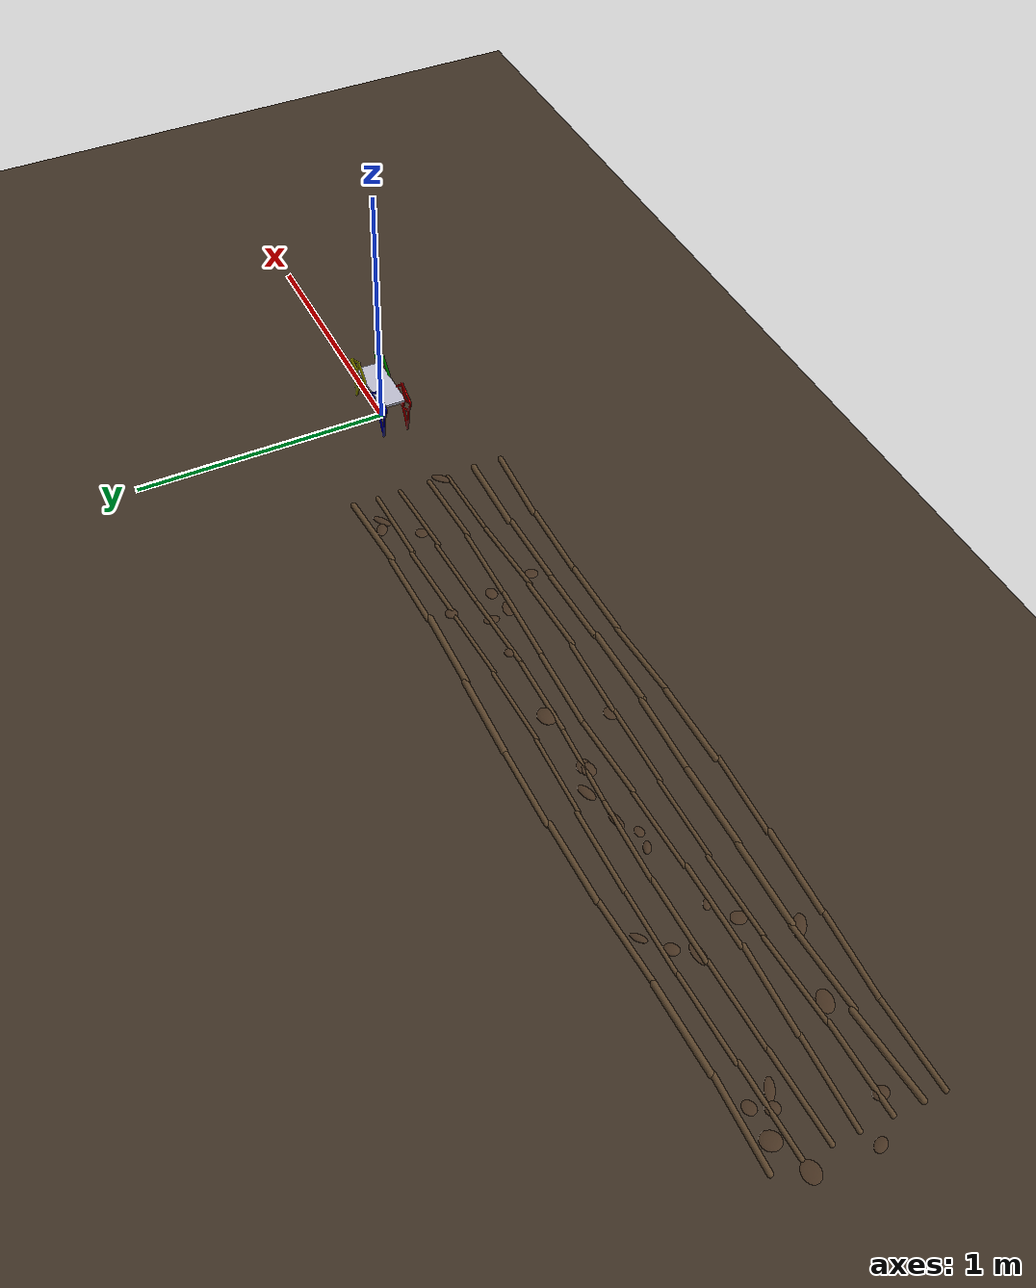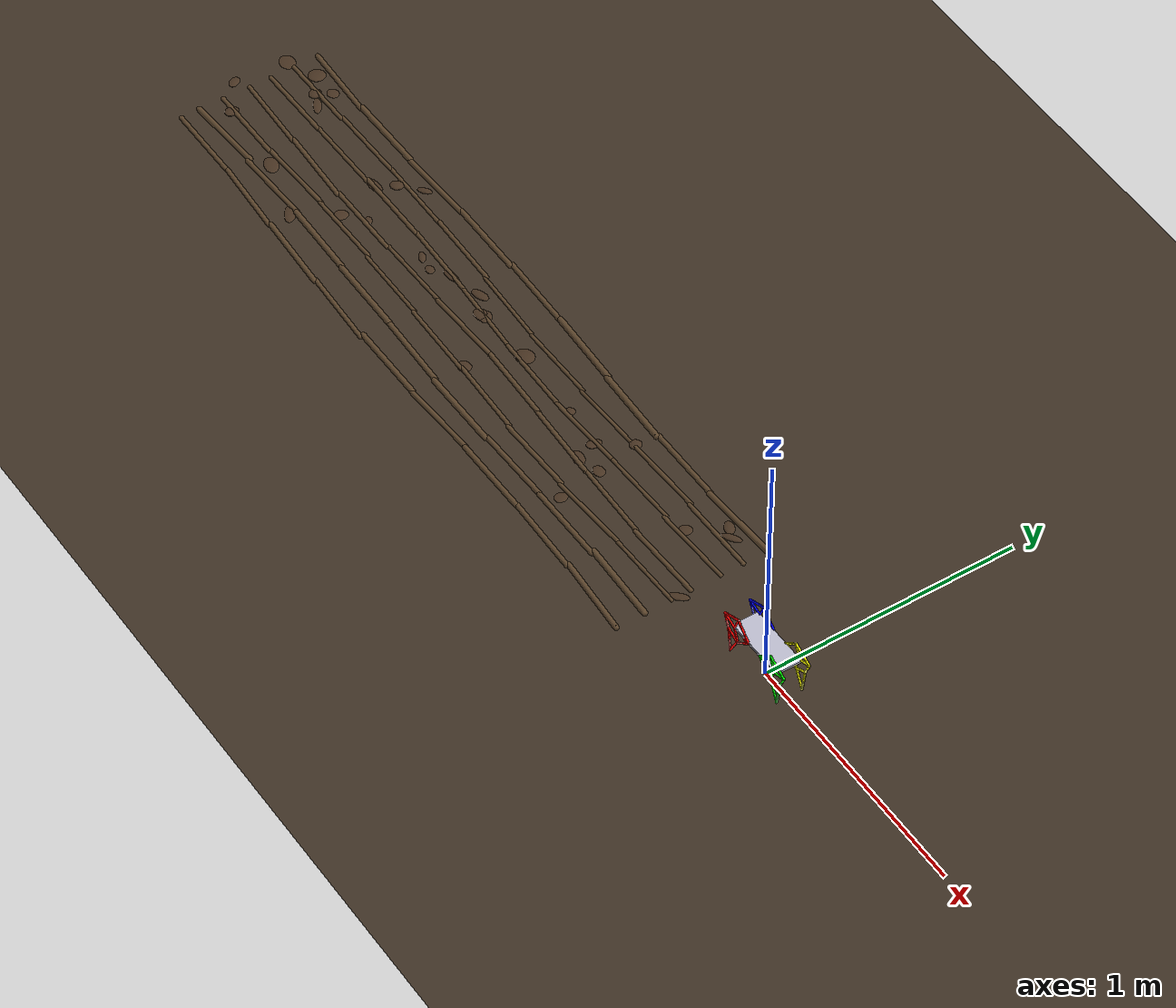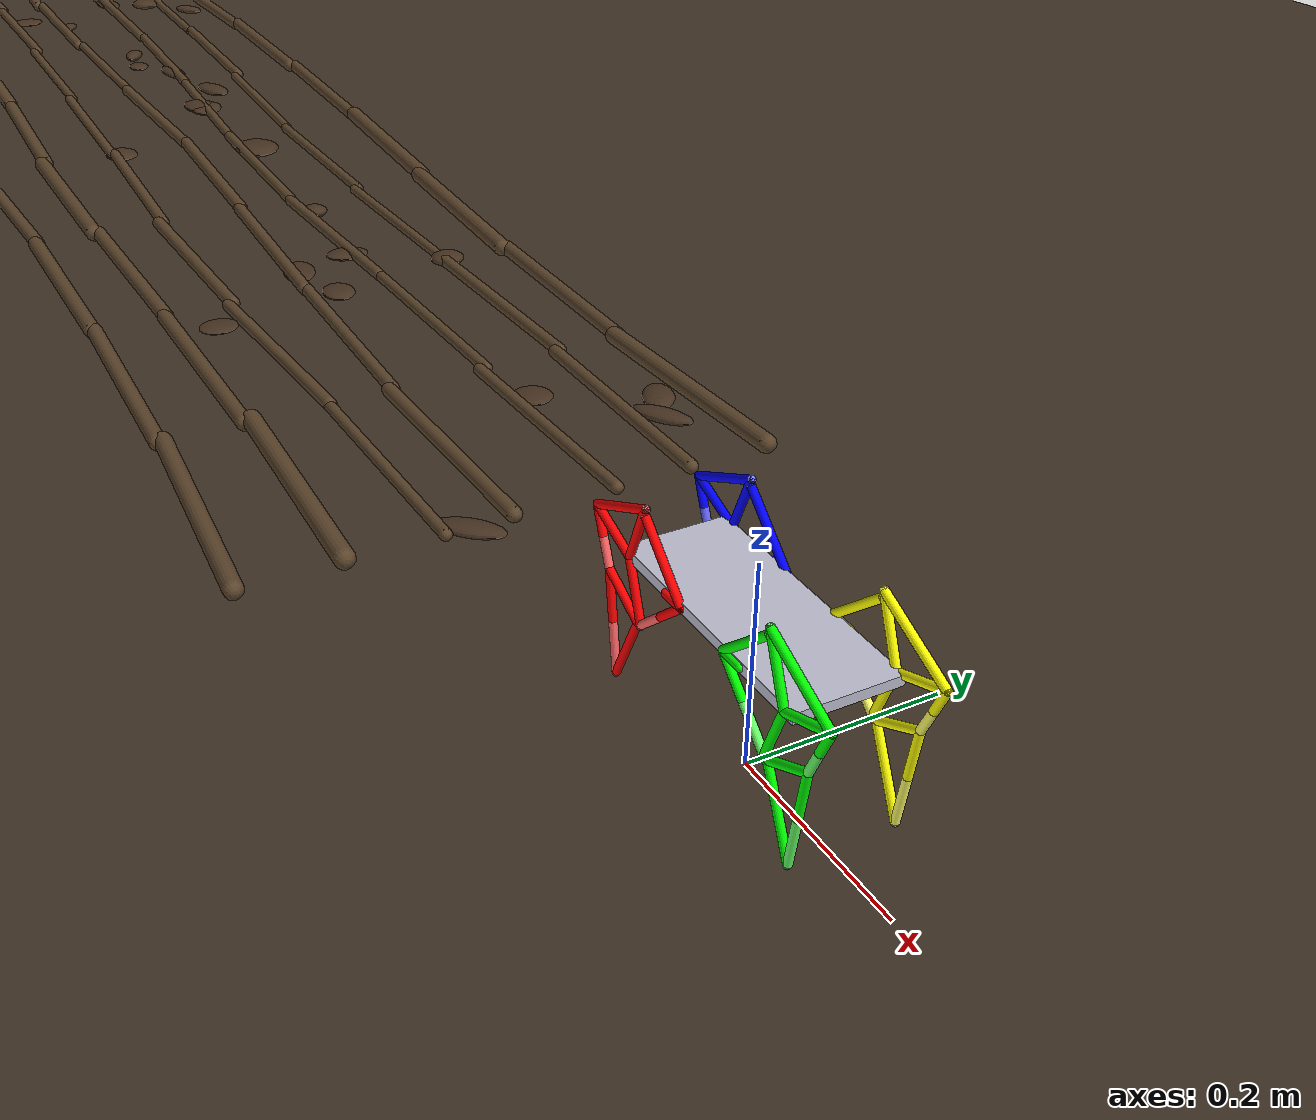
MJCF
<mujoco model="jansen_primitive_farm_terrain">
  <compiler angle="degree"/>
  <option gravity="0 0 -9.81"
          timestep="0.00025"
          integrator="implicitfast"
          solver="Newton"
          jacobian="dense"
          iterations="2000"
          ls_iterations="120"
          tolerance="1e-12"
          ls_tolerance="1e-14"
          cone="elliptic"
          noslip_iterations="40"
          noslip_tolerance="1e-10"/>
  <asset>
    <texture name="ground_tex" type="2d" builtin="checker" rgb1="0.22 0.26 0.30" rgb2="0.14 0.17 0.20" width="512" height="512"/>
    <material name="ground_mat" texture="ground_tex" texrepeat="24 24" reflectance="0"/>
  </asset>

  <default>
    <joint type="hinge" axis="0 1 0" damping="0.3" armature="0.003"/>
    <geom type="capsule" size="0.004" rgba="0.8 0.8 0.8 1" contype="0" conaffinity="0" density="1000"/>
    <site size="0.004"/>
    <default class="prismatic_joint">
      <joint type="slide" limited="true" range="-0.02 0.02" damping="100" armature="0.1"
             solreflimit="0.00001 1" solimplimit="0.99 0.999 0.001"/>
    </default>
    <default class="leg_contact">
      <geom contype="1" conaffinity="2" condim="3" friction="0.1 0.08 0.01"/>
    </default>
  </default>

  <worldbody>
    <geom name="ground" type="plane" pos="0 0 0" size="12 12 0.1" rgba="0.25 0.20 0.15 1" friction="0.18 0.10 0.02" contype="2" conaffinity="1"/>

    <!-- plowed farm-field rows without hfields: primitive obstacles only.
         The first 0.35 m is kept flat so reset poses are stable. -->
    <geom name="farm_furrow_00_00" type="capsule" fromto="-0.43 -0.304298 0.0106343 -0.746667 -0.284844 0.0106343" size="0.0106343" rgba="0.36 0.27 0.17 1" friction="0.22 0.12 0.025" contype="2" conaffinity="1"/>
    <geom name="farm_furrow_00_01" type="capsule" fromto="-0.746667 -0.290571 0.0100035 -1.06333 -0.284318 0.0100035" size="0.0100035" rgba="0.36 0.27 0.17 1" friction="0.22 0.12 0.025" contype="2" conaffinity="1"/>
    <geom name="farm_furrow_00_02" type="capsule" fromto="-1.06333 -0.286389 0.010336 -1.38 -0.289211 0.010336" size="0.010336" rgba="0.36 0.27 0.17 1" friction="0.22 0.12 0.025" contype="2" conaffinity="1"/>
    <geom name="farm_furrow_00_03" type="capsule" fromto="-1.38 -0.28634 0.00956036 -1.69667 -0.303886 0.00956036" size="0.00956036" rgba="0.36 0.27 0.17 1" friction="0.22 0.12 0.025" contype="2" conaffinity="1"/>
    <geom name="farm_furrow_00_04" type="capsule" fromto="-1.69667 -0.30081 0.0108359 -2.01333 -0.302615 0.0108359" size="0.0108359" rgba="0.36 0.27 0.17 1" friction="0.22 0.12 0.025" contype="2" conaffinity="1"/>
    <geom name="farm_furrow_00_05" type="capsule" fromto="-2.01333 -0.313621 0.00886516 -2.33 -0.301014 0.00886516" size="0.00886516" rgba="0.36 0.27 0.17 1" friction="0.22 0.12 0.025" contype="2" conaffinity="1"/>
    <geom name="farm_furrow_00_06" type="capsule" fromto="-2.33 -0.306864 0.010456 -2.64667 -0.292191 0.010456" size="0.010456" rgba="0.36 0.27 0.17 1" friction="0.22 0.12 0.025" contype="2" conaffinity="1"/>
    <geom name="farm_furrow_00_07" type="capsule" fromto="-2.64667 -0.297113 0.00935346 -2.96333 -0.2799 0.00935346" size="0.00935346" rgba="0.36 0.27 0.17 1" friction="0.22 0.12 0.025" contype="2" conaffinity="1"/>
    <geom name="farm_furrow_00_08" type="capsule" fromto="-2.96333 -0.280971 0.00904517 -3.28 -0.282115 0.00904517" size="0.00904517" rgba="0.36 0.27 0.17 1" friction="0.22 0.12 0.025" contype="2" conaffinity="1"/>
    <geom name="farm_furrow_01_00" type="capsule" fromto="-0.43 -0.191565 0.0116233 -0.746667 -0.183242 0.0116233" size="0.0116233" rgba="0.36 0.27 0.17 1" friction="0.22 0.12 0.025" contype="2" conaffinity="1"/>
    <geom name="farm_furrow_01_01" type="capsule" fromto="-0.746667 -0.191739 0.00988772 -1.06333 -0.194907 0.00988772" size="0.00988772" rgba="0.36 0.27 0.17 1" friction="0.22 0.12 0.025" contype="2" conaffinity="1"/>
    <geom name="farm_furrow_01_02" type="capsule" fromto="-1.06333 -0.193197 0.00980716 -1.38 -0.201806 0.00980716" size="0.00980716" rgba="0.36 0.27 0.17 1" friction="0.22 0.12 0.025" contype="2" conaffinity="1"/>
    <geom name="farm_furrow_01_03" type="capsule" fromto="-1.38 -0.208431 0.0112362 -1.69667 -0.212293 0.0112362" size="0.0112362" rgba="0.36 0.27 0.17 1" friction="0.22 0.12 0.025" contype="2" conaffinity="1"/>
    <geom name="farm_furrow_01_04" type="capsule" fromto="-1.69667 -0.206118 0.0104423 -2.01333 -0.197576 0.0104423" size="0.0104423" rgba="0.36 0.27 0.17 1" friction="0.22 0.12 0.025" contype="2" conaffinity="1"/>
    <geom name="farm_furrow_01_05" type="capsule" fromto="-2.01333 -0.197255 0.0113208 -2.33 -0.195171 0.0113208" size="0.0113208" rgba="0.36 0.27 0.17 1" friction="0.22 0.12 0.025" contype="2" conaffinity="1"/>
    <geom name="farm_furrow_01_06" type="capsule" fromto="-2.33 -0.19228 0.0111854 -2.64667 -0.18663 0.0111854" size="0.0111854" rgba="0.36 0.27 0.17 1" friction="0.22 0.12 0.025" contype="2" conaffinity="1"/>
    <geom name="farm_furrow_01_07" type="capsule" fromto="-2.64667 -0.182875 0.0096197 -2.96333 -0.196418 0.0096197" size="0.0096197" rgba="0.36 0.27 0.17 1" friction="0.22 0.12 0.025" contype="2" conaffinity="1"/>
    <geom name="farm_furrow_01_08" type="capsule" fromto="-2.96333 -0.185985 0.0108891 -3.28 -0.207013 0.0108891" size="0.0108891" rgba="0.36 0.27 0.17 1" friction="0.22 0.12 0.025" contype="2" conaffinity="1"/>
    <geom name="farm_furrow_02_00" type="capsule" fromto="-0.43 -0.0831937 0.00694561 -0.746667 -0.0910807 0.00694561" size="0.00694561" rgba="0.36 0.27 0.17 1" friction="0.22 0.12 0.025" contype="2" conaffinity="1"/>
    <geom name="farm_furrow_02_01" type="capsule" fromto="-0.746667 -0.0901001 0.00814117 -1.06333 -0.11152 0.00814117" size="0.00814117" rgba="0.36 0.27 0.17 1" friction="0.22 0.12 0.025" contype="2" conaffinity="1"/>
    <geom name="farm_furrow_02_02" type="capsule" fromto="-1.06333 -0.105309 0.00887264 -1.38 -0.11563 0.00887264" size="0.00887264" rgba="0.36 0.27 0.17 1" friction="0.22 0.12 0.025" contype="2" conaffinity="1"/>
    <geom name="farm_furrow_02_03" type="capsule" fromto="-1.38 -0.10904 0.0082932 -1.69667 -0.0996539 0.0082932" size="0.0082932" rgba="0.36 0.27 0.17 1" friction="0.22 0.12 0.025" contype="2" conaffinity="1"/>
    <geom name="farm_furrow_02_04" type="capsule" fromto="-1.69667 -0.103179 0.00768791 -2.01333 -0.0982285 0.00768791" size="0.00768791" rgba="0.36 0.27 0.17 1" friction="0.22 0.12 0.025" contype="2" conaffinity="1"/>
    <geom name="farm_furrow_02_05" type="capsule" fromto="-2.01333 -0.0928728 0.00711539 -2.33 -0.0921233 0.00711539" size="0.00711539" rgba="0.36 0.27 0.17 1" friction="0.22 0.12 0.025" contype="2" conaffinity="1"/>
    <geom name="farm_furrow_02_06" type="capsule" fromto="-2.33 -0.0851293 0.00782062 -2.64667 -0.0894484 0.00782062" size="0.00782062" rgba="0.36 0.27 0.17 1" friction="0.22 0.12 0.025" contype="2" conaffinity="1"/>
    <geom name="farm_furrow_02_07" type="capsule" fromto="-2.64667 -0.0861265 0.00832617 -2.96333 -0.101208 0.00832617" size="0.00832617" rgba="0.36 0.27 0.17 1" friction="0.22 0.12 0.025" contype="2" conaffinity="1"/>
    <geom name="farm_furrow_02_08" type="capsule" fromto="-2.96333 -0.105347 0.00885238 -3.28 -0.106908 0.00885238" size="0.00885238" rgba="0.36 0.27 0.17 1" friction="0.22 0.12 0.025" contype="2" conaffinity="1"/>
    <geom name="farm_furrow_03_00" type="capsule" fromto="-0.43 -0.0067301 0.00887767 -0.746667 -0.0166649 0.00887767" size="0.00887767" rgba="0.36 0.27 0.17 1" friction="0.22 0.12 0.025" contype="2" conaffinity="1"/>
    <geom name="farm_furrow_03_01" type="capsule" fromto="-0.746667 -0.0115201 0.00821413 -1.06333 -0.00520414 0.00821413" size="0.00821413" rgba="0.36 0.27 0.17 1" friction="0.22 0.12 0.025" contype="2" conaffinity="1"/>
    <geom name="farm_furrow_03_02" type="capsule" fromto="-1.06333 -0.00693156 0.00879341 -1.38 0.00427892 0.00879341" size="0.00879341" rgba="0.36 0.27 0.17 1" friction="0.22 0.12 0.025" contype="2" conaffinity="1"/>
    <geom name="farm_furrow_03_03" type="capsule" fromto="-1.38 0.00657757 0.00920915 -1.69667 0.0158529 0.00920915" size="0.00920915" rgba="0.36 0.27 0.17 1" friction="0.22 0.12 0.025" contype="2" conaffinity="1"/>
    <geom name="farm_furrow_03_04" type="capsule" fromto="-1.69667 0.0149109 0.0089306 -2.01333 0.00209466 0.0089306" size="0.0089306" rgba="0.36 0.27 0.17 1" friction="0.22 0.12 0.025" contype="2" conaffinity="1"/>
    <geom name="farm_furrow_03_05" type="capsule" fromto="-2.01333 0.00535553 0.00740077 -2.33 -0.00234515 0.00740077" size="0.00740077" rgba="0.36 0.27 0.17 1" friction="0.22 0.12 0.025" contype="2" conaffinity="1"/>
    <geom name="farm_furrow_03_06" type="capsule" fromto="-2.33 -0.00831756 0.00848501 -2.64667 -0.0101183 0.00848501" size="0.00848501" rgba="0.36 0.27 0.17 1" friction="0.22 0.12 0.025" contype="2" conaffinity="1"/>
    <geom name="farm_furrow_03_07" type="capsule" fromto="-2.64667 -0.0168109 0.00915472 -2.96333 -0.00443742 0.00915472" size="0.00915472" rgba="0.36 0.27 0.17 1" friction="0.22 0.12 0.025" contype="2" conaffinity="1"/>
    <geom name="farm_furrow_03_08" type="capsule" fromto="-2.96333 -0.00868271 0.00835372 -3.28 0.00254265 0.00835372" size="0.00835372" rgba="0.36 0.27 0.17 1" friction="0.22 0.12 0.025" contype="2" conaffinity="1"/>
    <geom name="farm_furrow_04_00" type="capsule" fromto="-0.43 0.113461 0.00768051 -0.746667 0.0996811 0.00768051" size="0.00768051" rgba="0.36 0.27 0.17 1" friction="0.22 0.12 0.025" contype="2" conaffinity="1"/>
    <geom name="farm_furrow_04_01" type="capsule" fromto="-0.746667 0.108844 0.0072705 -1.06333 0.097977 0.0072705" size="0.0072705" rgba="0.36 0.27 0.17 1" friction="0.22 0.12 0.025" contype="2" conaffinity="1"/>
    <geom name="farm_furrow_04_02" type="capsule" fromto="-1.06333 0.0974741 0.00789481 -1.38 0.0821214 0.00789481" size="0.00789481" rgba="0.36 0.27 0.17 1" friction="0.22 0.12 0.025" contype="2" conaffinity="1"/>
    <geom name="farm_furrow_04_03" type="capsule" fromto="-1.38 0.0834238 0.00811894 -1.69667 0.0880854 0.00811894" size="0.00811894" rgba="0.36 0.27 0.17 1" friction="0.22 0.12 0.025" contype="2" conaffinity="1"/>
    <geom name="farm_furrow_04_04" type="capsule" fromto="-1.69667 0.0895471 0.00735003 -2.01333 0.105438 0.00735003" size="0.00735003" rgba="0.36 0.27 0.17 1" friction="0.22 0.12 0.025" contype="2" conaffinity="1"/>
    <geom name="farm_furrow_04_05" type="capsule" fromto="-2.01333 0.105954 0.00803132 -2.33 0.114865 0.00803132" size="0.00803132" rgba="0.36 0.27 0.17 1" friction="0.22 0.12 0.025" contype="2" conaffinity="1"/>
    <geom name="farm_furrow_04_06" type="capsule" fromto="-2.33 0.112069 0.00866156 -2.64667 0.110859 0.00866156" size="0.00866156" rgba="0.36 0.27 0.17 1" friction="0.22 0.12 0.025" contype="2" conaffinity="1"/>
    <geom name="farm_furrow_04_07" type="capsule" fromto="-2.64667 0.104888 0.00780586 -2.96333 0.100162 0.00780586" size="0.00780586" rgba="0.36 0.27 0.17 1" friction="0.22 0.12 0.025" contype="2" conaffinity="1"/>
    <geom name="farm_furrow_04_08" type="capsule" fromto="-2.96333 0.0978761 0.00855256 -3.28 0.0920819 0.00855256" size="0.00855256" rgba="0.36 0.27 0.17 1" friction="0.22 0.12 0.025" contype="2" conaffinity="1"/>
    <geom name="farm_furrow_05_00" type="capsule" fromto="-0.43 0.204694 0.00832928 -0.746667 0.201247 0.00832928" size="0.00832928" rgba="0.36 0.27 0.17 1" friction="0.22 0.12 0.025" contype="2" conaffinity="1"/>
    <geom name="farm_furrow_05_01" type="capsule" fromto="-0.746667 0.207542 0.00833568 -1.06333 0.194705 0.00833568" size="0.00833568" rgba="0.36 0.27 0.17 1" friction="0.22 0.12 0.025" contype="2" conaffinity="1"/>
    <geom name="farm_furrow_05_02" type="capsule" fromto="-1.06333 0.196635 0.00687555 -1.38 0.18333 0.00687555" size="0.00687555" rgba="0.36 0.27 0.17 1" friction="0.22 0.12 0.025" contype="2" conaffinity="1"/>
    <geom name="farm_furrow_05_03" type="capsule" fromto="-1.38 0.189677 0.00720665 -1.69667 0.183656 0.00720665" size="0.00720665" rgba="0.36 0.27 0.17 1" friction="0.22 0.12 0.025" contype="2" conaffinity="1"/>
    <geom name="farm_furrow_05_04" type="capsule" fromto="-1.69667 0.187012 0.00696569 -2.01333 0.197021 0.00696569" size="0.00696569" rgba="0.36 0.27 0.17 1" friction="0.22 0.12 0.025" contype="2" conaffinity="1"/>
    <geom name="farm_furrow_05_05" type="capsule" fromto="-2.01333 0.20367 0.00827721 -2.33 0.209598 0.00827721" size="0.00827721" rgba="0.36 0.27 0.17 1" friction="0.22 0.12 0.025" contype="2" conaffinity="1"/>
    <geom name="farm_furrow_05_06" type="capsule" fromto="-2.33 0.207394 0.007339 -2.64667 0.208767 0.007339" size="0.007339" rgba="0.36 0.27 0.17 1" friction="0.22 0.12 0.025" contype="2" conaffinity="1"/>
    <geom name="farm_furrow_05_07" type="capsule" fromto="-2.64667 0.20676 0.00782171 -2.96333 0.200855 0.00782171" size="0.00782171" rgba="0.36 0.27 0.17 1" friction="0.22 0.12 0.025" contype="2" conaffinity="1"/>
    <geom name="farm_furrow_05_08" type="capsule" fromto="-2.96333 0.194255 0.00823427 -3.28 0.18971 0.00823427" size="0.00823427" rgba="0.36 0.27 0.17 1" friction="0.22 0.12 0.025" contype="2" conaffinity="1"/>
    <geom name="farm_furrow_06_00" type="capsule" fromto="-0.43 0.301393 0.0114442 -0.746667 0.283723 0.0114442" size="0.0114442" rgba="0.36 0.27 0.17 1" friction="0.22 0.12 0.025" contype="2" conaffinity="1"/>
    <geom name="farm_furrow_06_01" type="capsule" fromto="-0.746667 0.288815 0.00998288 -1.06333 0.286989 0.00998288" size="0.00998288" rgba="0.36 0.27 0.17 1" friction="0.22 0.12 0.025" contype="2" conaffinity="1"/>
    <geom name="farm_furrow_06_02" type="capsule" fromto="-1.06333 0.280008 0.0118944 -1.38 0.289257 0.0118944" size="0.0118944" rgba="0.36 0.27 0.17 1" friction="0.22 0.12 0.025" contype="2" conaffinity="1"/>
    <geom name="farm_furrow_06_03" type="capsule" fromto="-1.38 0.293664 0.0120761 -1.69667 0.30479 0.0120761" size="0.0120761" rgba="0.36 0.27 0.17 1" friction="0.22 0.12 0.025" contype="2" conaffinity="1"/>
    <geom name="farm_furrow_06_04" type="capsule" fromto="-1.69667 0.304153 0.00997071 -2.01333 0.309798 0.00997071" size="0.00997071" rgba="0.36 0.27 0.17 1" friction="0.22 0.12 0.025" contype="2" conaffinity="1"/>
    <geom name="farm_furrow_06_05" type="capsule" fromto="-2.01333 0.302526 0.010581 -2.33 0.302586 0.010581" size="0.010581" rgba="0.36 0.27 0.17 1" friction="0.22 0.12 0.025" contype="2" conaffinity="1"/>
    <geom name="farm_furrow_06_06" type="capsule" fromto="-2.33 0.299368 0.00991099 -2.64667 0.285512 0.00991099" size="0.00991099" rgba="0.36 0.27 0.17 1" friction="0.22 0.12 0.025" contype="2" conaffinity="1"/>
    <geom name="farm_furrow_06_07" type="capsule" fromto="-2.64667 0.287762 0.0114003 -2.96333 0.283704 0.0114003" size="0.0114003" rgba="0.36 0.27 0.17 1" friction="0.22 0.12 0.025" contype="2" conaffinity="1"/>
    <geom name="farm_furrow_06_08" type="capsule" fromto="-2.96333 0.278957 0.0100411 -3.28 0.290364 0.0100411" size="0.0100411" rgba="0.36 0.27 0.17 1" friction="0.22 0.12 0.025" contype="2" conaffinity="1"/>
    <geom name="soil_clod_00" type="ellipsoid" pos="-1.13186 0.00814076 0.00351426" size="0.0358656 0.0213287 0.00351426" euler="0 0 -15.2243" rgba="0.28 0.20 0.13 1" friction="0.22 0.12 0.025" contype="2" conaffinity="1"/>
    <geom name="soil_clod_01" type="ellipsoid" pos="-1.70077 -0.0880017 0.00562505" size="0.0283814 0.0241273 0.00562505" euler="0 0 11.2286" rgba="0.28 0.20 0.13 1" friction="0.22 0.12 0.025" contype="2" conaffinity="1"/>
    <geom name="soil_clod_02" type="ellipsoid" pos="-1.95469 0.138564 0.00721346" size="0.037887 0.0181471 0.00721346" euler="0 0 18.0489" rgba="0.28 0.20 0.13 1" friction="0.22 0.12 0.025" contype="2" conaffinity="1"/>
    <geom name="soil_clod_03" type="ellipsoid" pos="-0.662205 0.129002 0.00452993" size="0.0247822 0.0234506 0.00452993" euler="0 0 33.1154" rgba="0.28 0.20 0.13 1" friction="0.22 0.12 0.025" contype="2" conaffinity="1"/>
    <geom name="soil_clod_04" type="ellipsoid" pos="-1.87027 0.0925667 0.00728973" size="0.0365764 0.0250381 0.00728973" euler="0 0 17.5852" rgba="0.28 0.20 0.13 1" friction="0.22 0.12 0.025" contype="2" conaffinity="1"/>
    <geom name="soil_clod_05" type="ellipsoid" pos="-3.09127 0.237948 0.00398186" size="0.0250063 0.0216913 0.00398186" euler="0 0 10.0326" rgba="0.28 0.20 0.13 1" friction="0.22 0.12 0.025" contype="2" conaffinity="1"/>
    <geom name="soil_clod_06" type="ellipsoid" pos="-2.47591 0.0058798 0.00568013" size="0.0213205 0.0130681 0.00568013" euler="0 0 -29.3929" rgba="0.28 0.20 0.13 1" friction="0.22 0.12 0.025" contype="2" conaffinity="1"/>
    <geom name="soil_clod_07" type="ellipsoid" pos="-1.07331 0.201286 0.00805785" size="0.0226729 0.0228223 0.00805785" euler="0 0 -6.64253" rgba="0.28 0.20 0.13 1" friction="0.22 0.12 0.025" contype="2" conaffinity="1"/>
    <geom name="soil_clod_08" type="ellipsoid" pos="-1.04288 0.0316732 0.00527206" size="0.0268195 0.0213225 0.00527206" euler="0 0 -4.76243" rgba="0.28 0.20 0.13 1" friction="0.22 0.12 0.025" contype="2" conaffinity="1"/>
    <geom name="soil_clod_09" type="ellipsoid" pos="-0.588182 0.255456 0.00673119" size="0.0312185 0.019421 0.00673119" euler="0 0 -25.3894" rgba="0.28 0.20 0.13 1" friction="0.22 0.12 0.025" contype="2" conaffinity="1"/>
    <geom name="soil_clod_10" type="ellipsoid" pos="-1.85769 0.0983224 0.00681071" size="0.0301082 0.0241527 0.00681071" euler="0 0 -27.3033" rgba="0.28 0.20 0.13 1" friction="0.22 0.12 0.025" contype="2" conaffinity="1"/>
    <geom name="soil_clod_11" type="ellipsoid" pos="-2.22021 0.067971 0.00766635" size="0.0258913 0.0137227 0.00766635" euler="0 0 -26.0764" rgba="0.28 0.20 0.13 1" friction="0.22 0.12 0.025" contype="2" conaffinity="1"/>
    <geom name="soil_clod_12" type="ellipsoid" pos="-0.546855 0.236833 0.00709832" size="0.0390896 0.0146955 0.00709832" euler="0 0 33.0982" rgba="0.28 0.20 0.13 1" friction="0.22 0.12 0.025" contype="2" conaffinity="1"/>
    <geom name="soil_clod_13" type="ellipsoid" pos="-2.6578 -0.205081 0.00649146" size="0.0448209 0.0223579 0.00649146" euler="0 0 -35.9869" rgba="0.28 0.20 0.13 1" friction="0.22 0.12 0.025" contype="2" conaffinity="1"/>
    <geom name="soil_clod_14" type="ellipsoid" pos="-2.49151 0.250039 0.00669281" size="0.0294703 0.0131078 0.00669281" euler="0 0 37.7856" rgba="0.28 0.20 0.13 1" friction="0.22 0.12 0.025" contype="2" conaffinity="1"/>
    <geom name="soil_clod_15" type="ellipsoid" pos="-3.2098 -0.114544 0.00816801" size="0.0223371 0.0274648 0.00816801" euler="0 0 6.46678" rgba="0.28 0.20 0.13 1" friction="0.22 0.12 0.025" contype="2" conaffinity="1"/>
    <geom name="soil_clod_16" type="ellipsoid" pos="-1.32157 0.0991533 0.0083882" size="0.0187594 0.0175376 0.0083882" euler="0 0 12.6329" rgba="0.28 0.20 0.13 1" friction="0.22 0.12 0.025" contype="2" conaffinity="1"/>
    <geom name="soil_clod_17" type="ellipsoid" pos="-2.61346 0.116386 0.00477612" size="0.0420051 0.0194483 0.00477612" euler="0 0 4.55083" rgba="0.28 0.20 0.13 1" friction="0.22 0.12 0.025" contype="2" conaffinity="1"/>
    <geom name="soil_clod_18" type="ellipsoid" pos="-1.15591 0.0859886 0.0055659" size="0.020335 0.0288743 0.0055659" euler="0 0 -9.92443" rgba="0.28 0.20 0.13 1" friction="0.22 0.12 0.025" contype="2" conaffinity="1"/>
    <geom name="soil_clod_19" type="ellipsoid" pos="-2.55549 -0.0578692 0.00365212" size="0.0249138 0.0274448 0.00365212" euler="0 0 -14.1274" rgba="0.28 0.20 0.13 1" friction="0.22 0.12 0.025" contype="2" conaffinity="1"/>
    <geom name="soil_clod_20" type="ellipsoid" pos="-2.56795 0.181394 0.00793658" size="0.0222149 0.0262146 0.00793658" euler="0 0 -43.4767" rgba="0.28 0.20 0.13 1" friction="0.22 0.12 0.025" contype="2" conaffinity="1"/>
    <geom name="soil_clod_21" type="ellipsoid" pos="-1.62322 0.110024 0.00818057" size="0.0384641 0.0336459 0.00818057" euler="0 0 6.53689" rgba="0.28 0.20 0.13 1" friction="0.22 0.12 0.025" contype="2" conaffinity="1"/>
    <geom name="soil_clod_22" type="ellipsoid" pos="-1.01516 -0.139382 0.00394208" size="0.0222911 0.0254894 0.00394208" euler="0 0 0.521842" rgba="0.28 0.20 0.13 1" friction="0.22 0.12 0.025" contype="2" conaffinity="1"/>
    <geom name="soil_clod_23" type="ellipsoid" pos="-3.31963 0.184922 0.0037683" size="0.0369722 0.0301055 0.0037683" euler="0 0 -7.93687" rgba="0.28 0.20 0.13 1" friction="0.22 0.12 0.025" contype="2" conaffinity="1"/>
    <geom name="soil_clod_24" type="ellipsoid" pos="-2.15681 0.0596351 0.00484818" size="0.0215842 0.0164118 0.00484818" euler="0 0 -2.98931" rgba="0.28 0.20 0.13 1" friction="0.22 0.12 0.025" contype="2" conaffinity="1"/>
    <geom name="soil_clod_25" type="ellipsoid" pos="-3.3355 -0.027928 0.00559349" size="0.0185281 0.0270378 0.00559349" euler="0 0 30.5621" rgba="0.28 0.20 0.13 1" friction="0.22 0.12 0.025" contype="2" conaffinity="1"/>
    <geom name="soil_clod_26" type="ellipsoid" pos="-0.42999 -0.0558108 0.00660617" size="0.0398337 0.0162289 0.00660617" euler="0 0 44.1265" rgba="0.28 0.20 0.13 1" friction="0.22 0.12 0.025" contype="2" conaffinity="1"/>
    <geom name="soil_clod_27" type="ellipsoid" pos="-3.12203 0.182117 0.00794609" size="0.0227769 0.0245632 0.00794609" euler="0 0 -4.47592" rgba="0.28 0.20 0.13 1" friction="0.22 0.12 0.025" contype="2" conaffinity="1"/>
    <geom name="soil_clod_28" type="ellipsoid" pos="-3.0684 0.158048 0.00407193" size="0.0395319 0.0160939 0.00407193" euler="0 0 -28.5063" rgba="0.28 0.20 0.13 1" friction="0.22 0.12 0.025" contype="2" conaffinity="1"/>
    <geom name="soil_clod_29" type="ellipsoid" pos="-3.19921 0.237158 0.00666244" size="0.0320099 0.033932 0.00666244" euler="0 0 -27.8677" rgba="0.28 0.20 0.13 1" friction="0.22 0.12 0.025" contype="2" conaffinity="1"/>
    <geom name="soil_clod_30" type="ellipsoid" pos="-2.08733 0.1049 0.00657264" size="0.0398073 0.0152239 0.00657264" euler="0 0 8.85005" rgba="0.28 0.20 0.13 1" friction="0.22 0.12 0.025" contype="2" conaffinity="1"/>
    <geom name="soil_clod_31" type="ellipsoid" pos="-2.90254 -0.135238 0.00448366" size="0.0408588 0.0270545 0.00448366" euler="0 0 -18.2517" rgba="0.28 0.20 0.13 1" friction="0.22 0.12 0.025" contype="2" conaffinity="1"/>

    <!-- Plate dimensions: 0.25008 m x 0.1 m x 0.01 m -->
    <!-- MuJoCo box size uses half-extents: 0.12504 0.05 0.005 -->
    <!-- Center at z=0.155 so the plate bottom is at z=0.15 -->
    <body name="plate_body" pos="0 0 0.155">
      <freejoint name="plate_free"/>
      <geom
        name="plate"
        type="box"
        size="0.12504 0.05 0.005"
        rgba="0.75 0.75 0.82 1"
        density="5000"/>

      <body name="link_m" pos="-0.055 -0.05 0" childclass="leg_contact">
        <joint name="hinge_m" type="hinge" pos="0 0 0"/>
        <geom name="link_m" type="capsule" fromto="0 0 0 0.02384 0 0" rgba="1 0 0 1"/>
              <body name="link_j" pos="0.02384 0 0" euler="0 42 0">
                <joint name="hinge_j" type="hinge" pos="0 0 0"/>
                <geom name="link_j" type="capsule" fromto="0 0 0 -0.07870 0 0" rgba="1 0 0 1"/>
                <site name="j_end" pos="-0.07870 0 0" rgba="1 0.4 0.4 1"/>
              </body>
              <body name="link_k" pos="0.02384 0 0" euler="0 -42 0">
                <joint name="hinge_k" type="hinge" pos="0 0 0"/>
                <geom name="link_k_outer" type="capsule" fromto="0 0 0 -0.04180 0 0" rgba="1 0 0 1"/>
                <body name="link_k_inner" pos="-0.04180 0 0">
                  <joint class="prismatic_joint" name="slide_k" axis="-1 0 0"/>
                  <geom name="link_k_inner" type="capsule" fromto="0 0 0 -0.04180 0 0" rgba="1 0.4 0.4 1"/>
                  <site name="k_end" pos="-0.04180 0 0" rgba="1 0.5 0.5 1"/>
                </body>
              </body>

      </body>
      <body name="link_c" pos="-0.11404 -0.05 0" euler="0 -110 0" childclass="leg_contact">
        <joint name="hinge_c" type="hinge" pos="0 0 0"/>
        <geom name="link_c" type="capsule" fromto="0 0 0 -0.06006 0 0" rgba="1 0 0 1"/>
        <site name="c_end" pos="-0.06046 0 0" rgba="1 0.5 0.5 1"/>
      </body>
      <body name="triangle_link1" pos="-0.11404 -0.05 0" euler="0 22 0" childclass="leg_contact">
        <joint name="tri_hinge" type="hinge" pos="0 0 0"/>

        <!-- Rigid triangle in one body: B(0,0,0), E(0,0,0.06328), D(-0.08869,0,0.00317) -->
        <geom name="edge_b" type="capsule" fromto="0 0 0 0 0 0.06328" rgba="1 0 0 1"/>
        <geom name="edge_e" type="capsule" fromto="0 0 0.06328 -0.0600779625 0 -0.0019622756" rgba="1 0 0 1"/>
        <geom name="edge_d" type="capsule" fromto="-0.0600779625 0 -0.0019622756 0 0 0" rgba="1 0 0 1"/>
              <body name="link_f_outer" pos="-0.0600779625 0 -0.0019622756" euler="0 -135 0">
                <joint name="hinge_f" type="hinge" pos="0 0 0"/>
                <geom name="link_f_outer" type="capsule" fromto="0 0 0 -0.02836 0 0" rgba="1 0 0 1"/>
                <body name="link_f_inner" pos="-0.02836 0 0">
                    <joint class="prismatic_joint" name="slide_f" axis="-1 0 0"/>
                    <geom name="link_f_inner" type="capsule" fromto="0 0 0 -0.02836 0 0" rgba="1 0.4 0.4 1"/>
                    <body name="triangle_link2" pos="-0.02836 0 0" euler="0 -130 0">
                        <joint name="tri_hinge_ghi" type="hinge" pos="0 0 0"/>
                        <inertial pos="0 0 0" mass="1e-4" diaginertia="1e-8 1e-8 1e-8"/>

                        <!-- Articulated G-H-I triangle: links rotate relative to each other.
                             H is telescopic via slide_h. -->
                        <body name="link_g_red" pos="0 0 0">
                            <joint name="hinge_g_red" type="hinge" pos="0 0 0"/>
                            <geom name="edge_g" type="capsule" fromto="0 0 0 0 0 0.05614" rgba="1 0 0 1"/>
                            <body name="link_i_red" pos="0 0 0.05614">
                                <joint name="hinge_i_red" type="hinge" pos="0 0 0"/>
                                <site name="g_i" pos="0 0 0" rgba="1 0.5 0.5 1"/>
                                <geom name="edge_i" type="capsule" fromto="0 0 0 0.0832629937 0 0.0024827155" rgba="1 0 0 1"/>
                                <site name="h_match_red" pos="0.0832629937 0 0.0024827155" rgba="1 0.5 0.5 1"/>
                            </body>
                        </body>
                        <body name="link_h_red" pos="0 0 0">
                            <joint name="hinge_h_red" type="hinge" pos="0 0 0"/>
                            <geom name="edge_h_outer" type="capsule" fromto="0 0 0 0.0416314969 0 0.0293113578" rgba="1 0 0 1"/>
                            <body name="link_h_inner" pos="0.0416314969 0 0.0293113578">
                                <joint class="prismatic_joint" name="slide_h" axis="0.8178 0 0.5755"/>
                                <geom name="edge_h_inner" type="capsule" fromto="0 0 0 0.0416314969 0 0.0293113578" rgba="1 0.4 0.4 1"/>
                                <site name="h_end_red" pos="0.0416314969 0 0.0293113578" rgba="1 0.5 0.5 1"/>
                            </body>
                        </body>
                    </body>
                </body>
              </body>

        <site name="b_e" pos="0 0 0.06328" rgba="1 0.5 0.5 1"/>
      </body>

      <body name="link_m_r" pos="0.055 -0.05 0" childclass="leg_contact">
        <joint name="hinge_m_r" type="hinge" pos="0 0 0"/>
        <geom name="link_m_r" type="capsule" fromto="0 0 0 -0.02384 0 0" rgba="0 1 0 1"/>
        <body name="link_j_r" pos="-0.02384 0 0" euler="0 -42 0">
          <joint name="hinge_j_r" type="hinge" pos="0 0 0"/>
          <geom name="link_j_r" type="capsule" fromto="0 0 0 0.07870 0 0" rgba="0 1 0 1"/>
          <site name="j_end_r" pos="0.07870 0 0" rgba="0.4 1 0.4 1"/>
        </body>
        <body name="link_k_r" pos="-0.02384 0 0" euler="0 42 0">
          <joint name="hinge_k_r" type="hinge" pos="0 0 0"/>
          <geom name="link_k_outer_r" type="capsule" fromto="0 0 0 0.04180 0 0" rgba="0 1 0 1"/>
          <body name="link_k_inner_r" pos="0.04180 0 0">
            <joint class="prismatic_joint" name="slide_k_r" axis="1 0 0"/>
            <geom name="link_k_inner_r" type="capsule" fromto="0 0 0 0.04180 0 0" rgba="0.4 1 0.4 1"/>
            <site name="k_end_r" pos="0.04180 0 0" rgba="0.5 1 0.5 1"/>
          </body>
        </body>
      </body>

      <body name="link_c_r" pos="0.11404 -0.05 0" euler="0 110 0" childclass="leg_contact">
        <joint name="hinge_c_r" type="hinge" pos="0 0 0"/>
        <geom name="link_c_r" type="capsule" fromto="0 0 0 0.06006 0 0" rgba="0 1 0 1"/>
        <site name="c_end_r" pos="0.06046 0 0" rgba="0.5 1 0.5 1"/>
      </body>

      <body name="triangle_link1_r" pos="0.11404 -0.05 0" euler="0 -22 0" childclass="leg_contact">
        <joint name="tri_hinge_r" type="hinge" pos="0 0 0"/>

        <geom name="edge_b_r" type="capsule" fromto="0 0 0 0 0 0.06328" rgba="0 1 0 1"/>
        <geom name="edge_e_r" type="capsule" fromto="0 0 0.06328 0.0600779625 0 -0.0019622756" rgba="0 1 0 1"/>
        <geom name="edge_d_r" type="capsule" fromto="0.0600779625 0 -0.0019622756 0 0 0" rgba="0 1 0 1"/>

        <body name="link_f_r" pos="0.0600779625 0 -0.0019622756" euler="0 135 0">
          <joint name="hinge_f_r" type="hinge" pos="0 0 0"/>
          <geom name="link_f_r_outer" type="capsule" fromto="0 0 0 0.02836 0 0" rgba="0 1 0 1"/>
          <body name="link_f_r_inner" pos="0.02836 0 0">
            <joint class="prismatic_joint" name="slide_f_r" axis="1 0 0"/>
            <geom name="link_f_r_inner" type="capsule" fromto="0 0 0 0.02836 0 0" rgba="0.4 1 0.4 1"/>

            <body name="triangle_link2_r" pos="0.02836 0 0" euler="0 130 0">
            <joint name="tri_hinge_ghi_r" type="hinge" pos="0 0 0"/>
            <inertial pos="0 0 0" mass="1e-4" diaginertia="1e-8 1e-8 1e-8"/>
            <body name="link_g_r" pos="0 0 0">
              <joint name="hinge_g_r" type="hinge" pos="0 0 0"/>
              <geom name="edge_g_r" type="capsule" fromto="0 0 0 0 0 0.05614" rgba="0 1 0 1"/>
              <body name="link_i_r" pos="0 0 0.05614">
                <joint name="hinge_i_r" type="hinge" pos="0 0 0"/>
                <site name="g_i_r" pos="0 0 0" rgba="0.5 1 0.5 1"/>
                <geom name="edge_i_r" type="capsule" fromto="0 0 0 -0.0832629937 0 0.0024827155" rgba="0 1 0 1"/>
                <site name="h_match_r" pos="-0.0832629937 0 0.0024827155" rgba="0.5 1 0.5 1"/>
              </body>
            </body>
            <body name="link_h_r" pos="0 0 0">
              <joint name="hinge_h_r" type="hinge" pos="0 0 0"/>
              <geom name="edge_h_outer_r" type="capsule" fromto="0 0 0 -0.0416314969 0 0.0293113578" rgba="0 1 0 1"/>
              <body name="link_h_inner_r" pos="-0.0416314969 0 0.0293113578">
                <joint class="prismatic_joint" name="slide_h_r" axis="-0.8178 0 0.5755"/>
                <geom name="edge_h_inner_r" type="capsule" fromto="0 0 0 -0.0416314969 0 0.0293113578" rgba="0.4 1 0.4 1"/>
                <site name="h_end_r" pos="-0.0416314969 0 0.0293113578" rgba="0.5 1 0.5 1"/>
              </body>
            </body>
            </body>
          </body>
        </body>

        <site name="b_e_r" pos="0 0 0.06328" rgba="0.5 1 0.5 1"/>
      </body>

      <body name="link_m_y" pos="-0.055 0.05 0" childclass="leg_contact">
        <joint name="hinge_m_y" type="hinge" pos="0 0 0"/>
        <geom name="link_m_y" type="capsule" fromto="0 0 0 0.02384 0 0" rgba="0 0 1 1"/>
        <body name="link_j_y" pos="0.02384 0 0" euler="0 42 0">
          <joint name="hinge_j_y" type="hinge" pos="0 0 0"/>
          <geom name="link_j_y" type="capsule" fromto="0 0 0 -0.07870 0 0" rgba="0 0 1 1"/>
          <site name="j_end_y" pos="-0.07870 0 0" rgba="0.4 0.4 1 1"/>
        </body>
        <body name="link_k_y" pos="0.02384 0 0" euler="0 -42 0">
          <joint name="hinge_k_y" type="hinge" pos="0 0 0"/>
          <geom name="link_k_outer_y" type="capsule" fromto="0 0 0 -0.04180 0 0" rgba="0 0 1 1"/>
          <body name="link_k_inner_y" pos="-0.04180 0 0">
            <joint class="prismatic_joint" name="slide_k_y" axis="-1 0 0"/>
            <geom name="link_k_inner_y" type="capsule" fromto="0 0 0 -0.04180 0 0" rgba="0.4 0.4 1 1"/>
            <site name="k_end_y" pos="-0.04180 0 0" rgba="0.5 0.5 1 1"/>
          </body>
        </body>
      </body>

      <body name="link_c_y" pos="-0.11404 0.05 0" euler="0 -110 0" childclass="leg_contact">
        <joint name="hinge_c_y" type="hinge" pos="0 0 0"/>
        <geom name="link_c_y" type="capsule" fromto="0 0 0 -0.06006 0 0" rgba="0 0 1 1"/>
        <site name="c_end_y" pos="-0.06046 0 0" rgba="0.5 0.5 1 1"/>
      </body>

      <body name="triangle_link1_y" pos="-0.11404 0.05 0" euler="0 22 0" childclass="leg_contact">
        <joint name="tri_hinge_y" type="hinge" pos="0 0 0"/>
        <geom name="edge_b_y" type="capsule" fromto="0 0 0 0 0 0.06328" rgba="0 0 1 1"/>
        <geom name="edge_e_y" type="capsule" fromto="0 0 0.06328 -0.0600779625 0 -0.0019622756" rgba="0 0 1 1"/>
        <geom name="edge_d_y" type="capsule" fromto="-0.0600779625 0 -0.0019622756 0 0 0" rgba="0 0 1 1"/>
        <body name="link_f_y" pos="-0.0600779625 0 -0.0019622756" euler="0 -135 0">
          <joint name="hinge_f_y" type="hinge" pos="0 0 0"/>
          <geom name="link_f_y_outer" type="capsule" fromto="0 0 0 -0.02836 0 0" rgba="0 0 1 1"/>
          <body name="link_f_y_inner" pos="-0.02836 0 0">
            <joint class="prismatic_joint" name="slide_f_y" axis="-1 0 0"/>
            <geom name="link_f_y_inner" type="capsule" fromto="0 0 0 -0.02836 0 0" rgba="0.4 0.4 1 1"/>
            <body name="triangle_link2_y" pos="-0.02836 0 0" euler="0 -130 0">
            <joint name="tri_hinge_ghi_y" type="hinge" pos="0 0 0"/>
            <inertial pos="0 0 0" mass="1e-4" diaginertia="1e-8 1e-8 1e-8"/>
            <body name="link_g_y" pos="0 0 0">
              <joint name="hinge_g_y" type="hinge" pos="0 0 0"/>
              <geom name="edge_g_y" type="capsule" fromto="0 0 0 0 0 0.05614" rgba="0 0 1 1"/>
              <body name="link_i_y" pos="0 0 0.05614">
                <joint name="hinge_i_y" type="hinge" pos="0 0 0"/>
                <site name="g_i_y" pos="0 0 0" rgba="0.5 0.5 1 1"/>
                <geom name="edge_i_y" type="capsule" fromto="0 0 0 0.0832629937 0 0.0024827155" rgba="0 0 1 1"/>
                <site name="h_match_y" pos="0.0832629937 0 0.0024827155" rgba="0.5 0.5 1 1"/>
              </body>
            </body>
            <body name="link_h_y" pos="0 0 0">
              <joint name="hinge_h_y" type="hinge" pos="0 0 0"/>
              <geom name="edge_h_outer_y" type="capsule" fromto="0 0 0 0.0416314969 0 0.0293113578" rgba="0 0 1 1"/>
              <body name="link_h_inner_y" pos="0.0416314969 0 0.0293113578">
                <joint class="prismatic_joint" name="slide_h_y" axis="0.8178 0 0.5755"/>
                <geom name="edge_h_inner_y" type="capsule" fromto="0 0 0 0.0416314969 0 0.0293113578" rgba="0.4 0.4 1 1"/>
                <site name="h_end_y" pos="0.0416314969 0 0.0293113578" rgba="0.5 0.5 1 1"/>
              </body>
            </body>
            </body>
          </body>
        </body>
        <site name="b_e_y" pos="0 0 0.06328" rgba="0.5 0.5 1 1"/>
      </body>

      <body name="link_m_r_y" pos="0.055 0.05 0" childclass="leg_contact">
        <joint name="hinge_m_r_y" type="hinge" pos="0 0 0"/>
        <geom name="link_m_r_y" type="capsule" fromto="0 0 0 -0.02384 0 0" rgba="1 1 0 1"/>
        <body name="link_j_r_y" pos="-0.02384 0 0" euler="0 -42 0">
          <joint name="hinge_j_r_y" type="hinge" pos="0 0 0"/>
          <geom name="link_j_r_y" type="capsule" fromto="0 0 0 0.07870 0 0" rgba="1 1 0 1"/>
          <site name="j_end_r_y" pos="0.07870 0 0" rgba="1 1 0.4 1"/>
        </body>
        <body name="link_k_r_y" pos="-0.02384 0 0" euler="0 42 0">
          <joint name="hinge_k_r_y" type="hinge" pos="0 0 0"/>
          <geom name="link_k_outer_r_y" type="capsule" fromto="0 0 0 0.04180 0 0" rgba="1 1 0 1"/>
          <body name="link_k_inner_r_y" pos="0.04180 0 0">
            <joint class="prismatic_joint" name="slide_k_r_y" axis="1 0 0"/>
            <geom name="link_k_inner_r_y" type="capsule" fromto="0 0 0 0.04180 0 0" rgba="1 1 0.4 1"/>
            <site name="k_end_r_y" pos="0.04180 0 0" rgba="1 1 0.5 1"/>
          </body>
        </body>
      </body>

      <body name="link_c_r_y" pos="0.11404 0.05 0" euler="0 110 0" childclass="leg_contact">
        <joint name="hinge_c_r_y" type="hinge" pos="0 0 0"/>
        <geom name="link_c_r_y" type="capsule" fromto="0 0 0 0.06006 0 0" rgba="1 1 0 1"/>
        <site name="c_end_r_y" pos="0.06046 0 0" rgba="1 1 0.5 1"/>
      </body>

      <body name="triangle_link1_r_y" pos="0.11404 0.05 0" euler="0 -22 0" childclass="leg_contact">
        <joint name="tri_hinge_r_y" type="hinge" pos="0 0 0"/>
        <geom name="edge_b_r_y" type="capsule" fromto="0 0 0 0 0 0.06328" rgba="1 1 0 1"/>
        <geom name="edge_e_r_y" type="capsule" fromto="0 0 0.06328 0.0600779625 0 -0.0019622756" rgba="1 1 0 1"/>
        <geom name="edge_d_r_y" type="capsule" fromto="0.0600779625 0 -0.0019622756 0 0 0" rgba="1 1 0 1"/>
        <body name="link_f_r_y" pos="0.0600779625 0 -0.0019622756" euler="0 135 0">
          <joint name="hinge_f_r_y" type="hinge" pos="0 0 0"/>
          <geom name="link_f_r_y_outer" type="capsule" fromto="0 0 0 0.02836 0 0" rgba="1 1 0 1"/>
          <body name="link_f_r_y_inner" pos="0.02836 0 0">
            <joint class="prismatic_joint" name="slide_f_r_y" axis="1 0 0"/>
            <geom name="link_f_r_y_inner" type="capsule" fromto="0 0 0 0.02836 0 0" rgba="1 1 0.4 1"/>
            <body name="triangle_link2_r_y" pos="0.02836 0 0" euler="0 130 0">
            <joint name="tri_hinge_ghi_r_y" type="hinge" pos="0 0 0"/>
            <inertial pos="0 0 0" mass="1e-4" diaginertia="1e-8 1e-8 1e-8"/>
            <body name="link_g_r_y" pos="0 0 0">
              <joint name="hinge_g_r_y" type="hinge" pos="0 0 0"/>
              <geom name="edge_g_r_y" type="capsule" fromto="0 0 0 0 0 0.05614" rgba="1 1 0 1"/>
              <body name="link_i_r_y" pos="0 0 0.05614">
                <joint name="hinge_i_r_y" type="hinge" pos="0 0 0"/>
                <site name="g_i_r_y" pos="0 0 0" rgba="1 1 0.5 1"/>
                <geom name="edge_i_r_y" type="capsule" fromto="0 0 0 -0.0832629937 0 0.0024827155" rgba="1 1 0 1"/>
                <site name="h_match_r_y" pos="-0.0832629937 0 0.0024827155" rgba="1 1 0.5 1"/>
              </body>
            </body>
            <body name="link_h_r_y" pos="0 0 0">
              <joint name="hinge_h_r_y" type="hinge" pos="0 0 0"/>
              <geom name="edge_h_outer_r_y" type="capsule" fromto="0 0 0 -0.0416314969 0 0.0293113578" rgba="1 1 0 1"/>
              <body name="link_h_inner_r_y" pos="-0.0416314969 0 0.0293113578">
                <joint class="prismatic_joint" name="slide_h_r_y" axis="-0.8178 0 0.5755"/>
                <geom name="edge_h_inner_r_y" type="capsule" fromto="0 0 0 -0.0416314969 0 0.0293113578" rgba="1 1 0.4 1"/>
                <site name="h_end_r_y" pos="-0.0416314969 0 0.0293113578" rgba="1 1 0.5 1"/>
              </body>
            </body>
            </body>
          </body>
        </body>
        <site name="b_e_r_y" pos="0 0 0.06328" rgba="1 1 0.5 1"/>
      </body>

    </body>
  </worldbody>
<equality>
  <!-- Minimal loop-closure set for this articulated topology: 4 connect constraints per leg. -->

  <!-- Red leg closures -->
  <connect name="j_to_be" site1="b_e" site2="j_end" solref="0.003 3" solimp="0.999 0.99995 0.00005"/>
  <connect name="c_to_k" site1="c_end" site2="k_end" solref="0.003 3" solimp="0.999 0.99995 0.00005"/>
  <connect name="c_to_gi" site1="c_end" site2="g_i" solref="0.003 3" solimp="0.999 0.99995 0.00005"/>
  <connect name="k_to_gi" site1="k_end" site2="g_i" solref="0.003 3" solimp="0.999 0.99995 0.00005"/>
  <connect name="h_to_i_red" site1="h_end_red" site2="h_match_red" solref="0.003 3" solimp="0.999 0.99995 0.00005"/>

  <!-- Green leg closures -->
  <connect name="j_to_be_r" site1="b_e_r" site2="j_end_r" solref="0.003 3" solimp="0.999 0.99995 0.00005"/>
  <connect name="c_to_k_r" site1="c_end_r" site2="k_end_r" solref="0.003 3" solimp="0.999 0.99995 0.00005"/>
  <connect name="c_to_gi_r" site1="c_end_r" site2="g_i_r" solref="0.003 3" solimp="0.999 0.99995 0.00005"/>
  <connect name="k_to_gi_r" site1="k_end_r" site2="g_i_r" solref="0.003 3" solimp="0.999 0.99995 0.00005"/>
  <connect name="h_to_i_r" site1="h_end_r" site2="h_match_r" solref="0.003 3" solimp="0.999 0.99995 0.00005"/>

  <!-- Blue leg closures -->
  <connect name="j_to_be_y" site1="b_e_y" site2="j_end_y" solref="0.003 3" solimp="0.999 0.99995 0.00005"/>
  <connect name="c_to_k_y" site1="c_end_y" site2="k_end_y" solref="0.003 3" solimp="0.999 0.99995 0.00005"/>
  <connect name="c_to_gi_y" site1="c_end_y" site2="g_i_y" solref="0.003 3" solimp="0.999 0.99995 0.00005"/>
  <connect name="k_to_gi_y" site1="k_end_y" site2="g_i_y" solref="0.003 3" solimp="0.999 0.99995 0.00005"/>
  <connect name="h_to_i_y" site1="h_end_y" site2="h_match_y" solref="0.003 3" solimp="0.999 0.99995 0.00005"/>

  <!-- Yellow leg closures -->
  <connect name="j_to_be_r_y" site1="b_e_r_y" site2="j_end_r_y" solref="0.003 3" solimp="0.999 0.99995 0.00005"/>
  <connect name="c_to_k_r_y" site1="c_end_r_y" site2="k_end_r_y" solref="0.003 3" solimp="0.999 0.99995 0.00005"/>
  <connect name="c_to_gi_r_y" site1="c_end_r_y" site2="g_i_r_y" solref="0.003 3" solimp="0.999 0.99995 0.00005"/>
  <connect name="k_to_gi_r_y" site1="k_end_r_y" site2="g_i_r_y" solref="0.003 3" solimp="0.999 0.99995 0.00005"/>
  <connect name="h_to_i_r_y" site1="h_end_r_y" site2="h_match_r_y" solref="0.003 3" solimp="0.999 0.99995 0.00005"/>
</equality>
  <actuator>
    <velocity name="crank_motor" joint="hinge_m" kv="25" ctrllimited="true" ctrlrange="-80 80"/>
    <velocity name="crank_motor_r" joint="hinge_m_r" kv="25" ctrllimited="true" ctrlrange="-80 80"/>
    <velocity name="crank_motor_y" joint="hinge_m_y" kv="25" ctrllimited="true" ctrlrange="-80 80"/>
    <velocity name="crank_motor_r_y" joint="hinge_m_r_y" kv="25" ctrllimited="true" ctrlrange="-80 80"/>
    <position name="h1_prismatic" joint="slide_h" kp="1600000" ctrllimited="true" ctrlrange="-0.02 0.02"/>
    <position name="h2_prismatic" joint="slide_h_r" kp="1600000" ctrllimited="true" ctrlrange="-0.02 0.02"/>
    <position name="h3_prismatic" joint="slide_h_y" kp="160000" ctrllimited="true" ctrlrange="-0.02 0.02"/>
    <position name="h4_prismatic" joint="slide_h_r_y" kp="1600000" ctrllimited="true" ctrlrange="-0.02 0.02"/>
    <position name="k1_prismatic" joint="slide_k" kp="3200000" ctrllimited="true" ctrlrange="-0.02 0.02"/>
    <position name="k2_prismatic" joint="slide_k_r" kp="3200000" ctrllimited="true" ctrlrange="-0.02 0.02  "/>
    <position name="k3_prismatic" joint="slide_k_y" kp="3200000" ctrllimited="true" ctrlrange="-0.02 0.02"/>l
    <position name="k4_prismatic" joint="slide_k_r_y" kp="3200000" ctrllimited="true" ctrlrange="-0.02 0.02"/>
    <position name="f1_prismatic" joint="slide_f" kp="1600000" ctrllimited="true" ctrlrange="-0.02 0.02"/>
    <position name="f2_prismatic" joint="slide_f_r" kp="1600000" ctrllimited="true" ctrlrange="-0.02 0.02"/>
    <position name="f3_prismatic" joint="slide_f_y" kp="1600000" ctrllimited="true" ctrlrange="-0.02 0.02"/>
    <position name="f4_prismatic" joint="slide_f_r_y" kp="1600000" ctrllimited="true" ctrlrange="-0.02 0.02"/>
  </actuator>
</mujoco>
